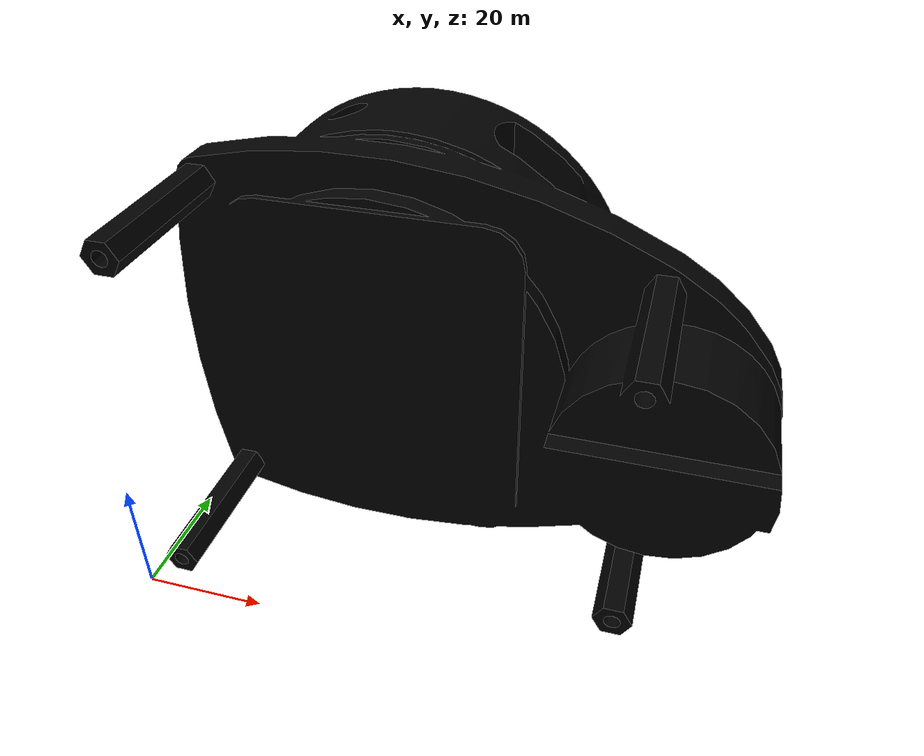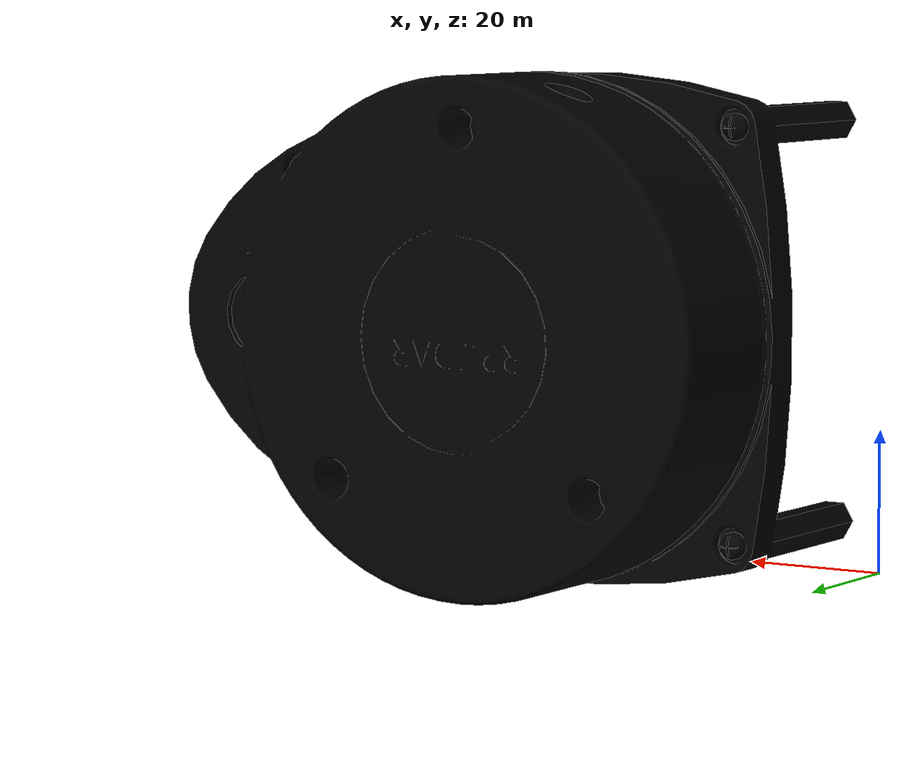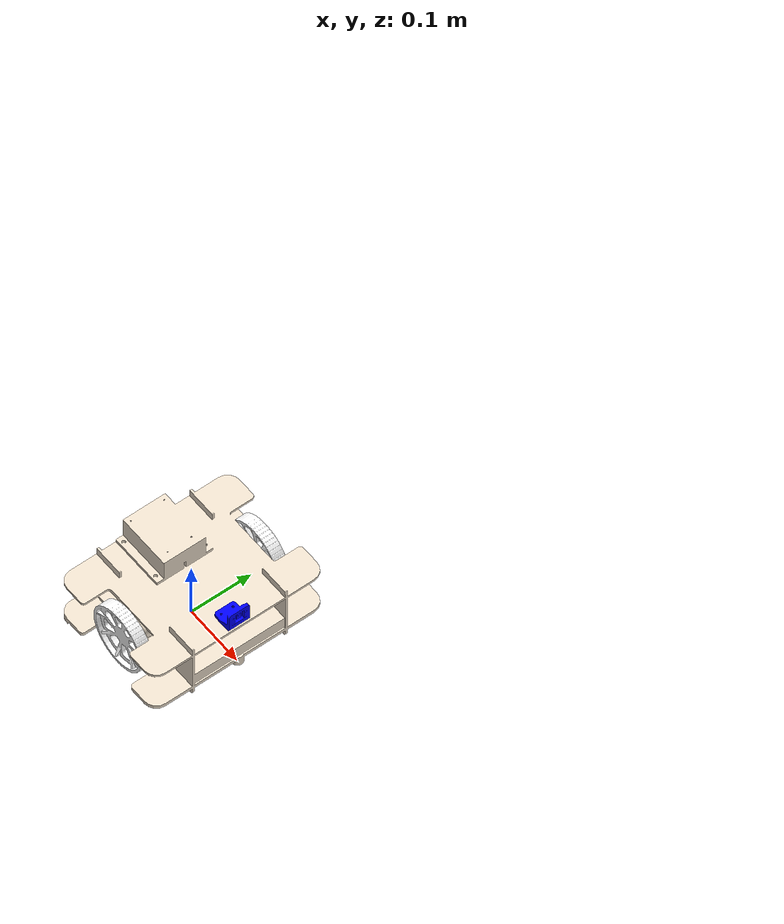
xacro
<?xml version="1.0"?>
<robot xmlns:xacro="http://www.ros.org/wiki/xacro"  name="tankbot">
    <xacro:include filename="robot_core.xacro" />
    <xacro:include filename="ros2_control.xacro"/>
    <xacro:include filename="lidar.xacro"/>
    <xacro:include filename="camera.xacro"/>
</robot>

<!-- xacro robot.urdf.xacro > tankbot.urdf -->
<!-- gz sdf -p tankbot.urdf > model.sdf -->

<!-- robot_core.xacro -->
<robot xmlns:xacro="http://www.ros.org/wiki/xacro">

    <xacro:include filename="inertial_macros.xacro" />

    <material name="white">
        <color rgba ="1 1 1 1"/>
    </material>

    <material name="blue">
        <color rgba ="0 0 1 1"/>
    </material>

    <material name="brown">
        <color rgba ="0.918 0.867 0.792 1"/>
    </material>

    <material name="black">
        <color rgba ="0 0 0 1"/>
    </material>

    <material name="green">
        <color rgba ="0 1 0 1"/>
    </material>

    <link name="base_link">
    </link>

    <joint name="base_footprint_joint" type="fixed">
        <parent link="base_link"/>
        <child link="base_footprint"/>
        <origin xyz="0 0 0" rpy="0 0 0"/>
    </joint>

    <link name="base_footprint">
    </link>

    <joint name="chassis_joint" type="fixed">
        <parent link="base_link"/>
        <child link="chassis"/>
        <origin xyz="-0.1 0 0"/>
    </joint>

    <link name="chassis">
        <visual>
            <origin xyz="0.10125 0 0.010"/>
            <geometry>
                <mesh filename="package://tankbot/meshes/chassis.stl"/>
            </geometry>
            <material name="brown"/>
        </visual>
        <collision>
            <origin xyz="0.1015 0 0.05"/>
            <geometry>
                <box size="0.215 0.201 0.10" />
            </geometry>
            <origin xyz="-0.01 0 0.01"/>
            <geometry>
                <box size="0.01 0.01 0.01" />
            </geometry>

        </collision>
        <inertial>
            <mass value="1"/>
            <inertia ixx="0.00556875" ixy="0.0" ixz="0.00489336" iyy="0.025445" iyz="0.0" izz="0.0276345"/>
        </inertial>
    </link>

    <gazebo reference="chassis">
        <material>Gazebo/Blue</material>
    </gazebo>

    <joint name="left_wheel_joint" type="continuous">
        <parent link="base_link"/>
        <child link="left_wheel"/>
        <origin xyz="0 0.105 0.044" rpy="-${pi/2} 0 0"/>
        <axis xyz="0 0 1"/>
    </joint>

    <link name="left_wheel">
        <visual>
            <geometry>
                <mesh filename="package://tankbot/meshes/left_wheel_link.stl"/>
            </geometry>
            <material name="white"/>
        </visual>
        <collision>
            <origin xyz="0 0.0 0.005"/>
            <geometry>
                <cylinder radius="0.052" length="0.02"/>
            </geometry>
        </collision>
        <xacro:inertial_cylinder mass="0.08" length="0.02" radius="0.052">
            <origin xyz="0 0 0" rpy="0 0 0"/>
        </xacro:inertial_cylinder>
    </link>
    <gazebo reference="left_wheel">
        <material>Gazebo/White</material>
    </gazebo>

    <joint name="right_wheel_joint" type="continuous">
        <parent link="base_link"/>
        <child link="right_wheel"/>
        <origin xyz="0 -0.105 0.044" rpy="${pi/2} 0 0"/>
        <axis xyz="0 0 -1"/>
    </joint>

    <link name="right_wheel">
        <visual>
            <geometry>
                <mesh filename="package://tankbot/meshes/right_wheel_link.stl"/>
            </geometry>
            <material name="white"/>
        </visual>
        <collision>
            <origin xyz="0 0.0 0.005"/>
            <geometry>
                <cylinder radius="0.052" length="0.02"/>
            </geometry>
        </collision>
        <xacro:inertial_cylinder mass="0.08" length="0.02" radius="0.052">
            <origin xyz="0 0 0" rpy="0 0 0"/>
        </xacro:inertial_cylinder>
    </link>
    <gazebo reference="right_wheel">
        <material>Gazebo/White</material>
    </gazebo>

    <joint name="caster_wheel_joint" type="fixed">
        <parent link="chassis"/>
        <child link="caster_wheel"/>
        <origin xyz="0.189 0 -0.0025" />
    </joint>

    <link name="caster_wheel">
        <visual>
            <geometry>
                <sphere radius="0.005"/>
            </geometry>
            <material name="black"/>
        </visual>
        <collision>
            <geometry>
                <sphere radius="0.005"/>
            </geometry>
        </collision>
        <xacro:inertial_sphere mass="0.004" radius="0.005">
            <origin xyz="0 0 0" rpy="0 0 0"/>
        </xacro:inertial_sphere>
    </link>
    <gazebo reference="caster_wheel">
        <material>Gazebo/Black</material>
        <mu1 value="0.0001"/>
        <mu2 value="0.0001"/>
    </gazebo>

        <joint name="caster_wheel_back_left_joint" type="fixed">
        <parent link="chassis"/>
        <child link="caster_wheel_back_left"/>
        <origin xyz="0.0075 0.1337 -0.002" />
    </joint>

    <link name="caster_wheel_back_left">
        <visual>
            <geometry>
                <sphere radius="0.0065"/>
            </geometry>
            <material name="black"/>
        </visual>
        <collision>
            <geometry>
                <sphere radius="0.0065"/>
            </geometry>
        </collision>
        <xacro:inertial_sphere mass="0.005" radius="0.0065">
            <origin xyz="0 0 0" rpy="0 0 0"/>
        </xacro:inertial_sphere>
    </link>
    <gazebo reference="caster_wheel_back_left">
        <material>Gazebo/Black</material>
        <mu1 value="0.0001"/>
        <mu2 value="0.0001"/>
    </gazebo>

    <joint name="caster_wheel_back_right_joint" type="fixed">
        <parent link="chassis"/>
        <child link="caster_wheel_back_right"/>
        <origin xyz="0.0075 -0.1337 -0.002" />
    </joint>

    <link name="caster_wheel_back_right">
        <visual>
            <geometry>
                <sphere radius="0.0065"/>
            </geometry>
            <material name="black"/>
        </visual>
        <collision>
            <geometry>
                <sphere radius="0.0065"/>
            </geometry>
        </collision>
        <xacro:inertial_sphere mass="0.005" radius="0.0065">
            <origin xyz="0 0 0" rpy="0 0 0"/>
        </xacro:inertial_sphere>
    </link>

   <gazebo reference="caster_wheel_back_right">
        <material>Gazebo/Black</material>
        <mu1 value="0.0001"/>
        <mu2 value="0.0001"/>
    </gazebo>

</robot>

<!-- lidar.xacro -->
<robot xmlns:xacro="http://www.ros.org/wiki/xacro">

    <joint name="laser_joint" type="fixed">
        <parent link="chassis"/>
        <child link="laser_frame"/>
        <origin xyz="0.035 0 0.165" rpy="0 0 0"/>
    </joint>

    <link name="laser_frame">
        <visual>
            <origin xyz="0.066 0 -0.155"/>
            <geometry>
                <mesh filename="package://tankbot/meshes/lidar.STL"/>
            </geometry>
            <material name="black"/>
        </visual>
        <collision>
            <origin xyz="0 0 -0.03"/>
            <geometry>
                <cylinder radius ="0.035" length="0.055" />
            </geometry>
        </collision>
        <xacro:inertial_cylinder mass="0.08" length="0.02" radius="0.052">
            <origin xyz="0 0 0" rpy="0 0 0"/>
        </xacro:inertial_cylinder>
    </link>

    <gazebo reference="laser_frame">
        <material>Gazebo/Black</material>

        <sensor name="laser" type="ray">
            <pose> 0 0 0 0 0 0 </pose>
            <visualize>true</visualize>
            <update_rate>10</update_rate>
            <ray>
                <scan>
                    <horizontal>
                        <samples>360</samples>
                        <min_angle>-3.14</min_angle>
                        <max_angle>3.14</max_angle>
                    </horizontal>
                </scan>
                <range>
                    <min>0.3</min>
                    <max>12</max>
                </range>
            </ray>
            <plugin name="laser_controller" filename="libgazebo_ros_ray_sensor.so">
                <ros>
                    <argument>~/out:=scan</argument>
                </ros>
                <output_type>sensor_msgs/LaserScan</output_type>
                <frame_name>laser_frame</frame_name>
            </plugin>
        </sensor>
    </gazebo>

</robot>

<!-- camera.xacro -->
<robot xmlns:xacro="http://www.ros.org/wiki/xacro">

    <joint name="camera_joint" type="fixed">
        <parent link="chassis"/>
        <child link="camera_frame"/>
        <origin xyz="0.195 0 0.095" rpy="0 0 0"/>
    </joint>

    <link name="camera_frame">
        <visual>
            <origin xyz="-0.094 0 -0.085"/>
            <geometry>
                <mesh filename="package://tankbot/meshes/camera.STL"/>
            </geometry>
            <material name="blue"/>
        </visual>
        <collision>
            <origin xyz="-0.005 0 0" rpy="0 0 0"/>
            <geometry>
                <box size="0.035 0.035 0.035" />
            </geometry>
        </collision>
        <xacro:inertial_box mass="0.02" x="0.035" y="0.035" z="0.035">
            <origin xyz="0 0 0" rpy="0 0 0"/>
        </xacro:inertial_box>
    </link>

    <joint name="camera_optical_joint" type="fixed">
        <parent link="camera_frame"/>
        <child link="camera_optical_link"/>
        <origin xyz="0 0 0.0125" rpy="${-pi/2} 0 ${-pi/2}"/>
    </joint>

    <link name="camera_optical_link"></link>

    <gazebo reference="camera_frame">
        <material>Gazebo/White</material>

        <sensor name="camera" type="camera">
            <pose> 0 0 0 0 0 0 </pose>
            <visualize>true</visualize>
            <update_rate>10</update_rate>
            <camera>
                <horizontal_fov>1.089</horizontal_fov>
                <image>
                    <format>R8G8B8</format>
                    <width>640</width>
                    <height>480</height>
                </image>
                <clip>
                    <near>0.05</near>
                    <far>8.0</far>
                </clip>
            </camera>
            <plugin name="camera_controller" filename="libgazebo_ros_camera.so">
                <frame_name>camera_optical_link</frame_name>
            </plugin>
        </sensor>
    </gazebo>
</robot>
